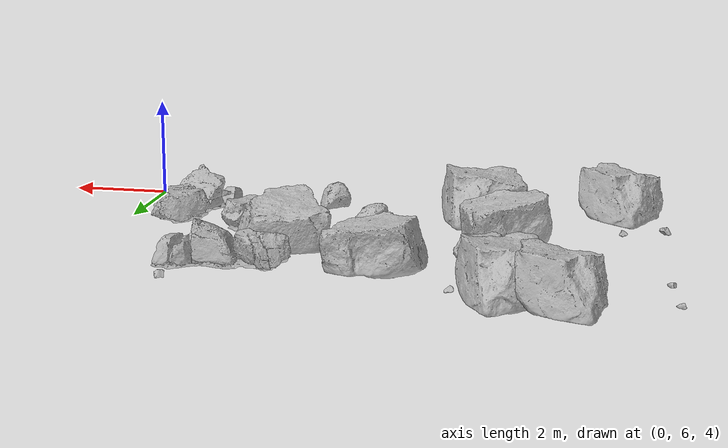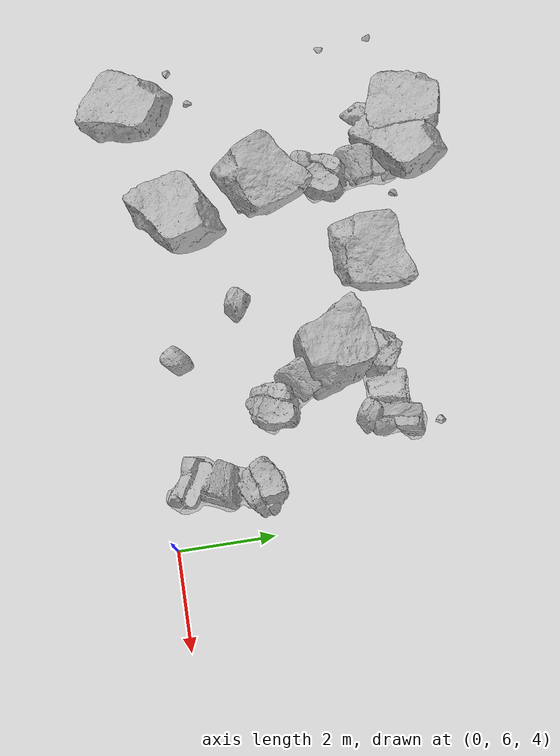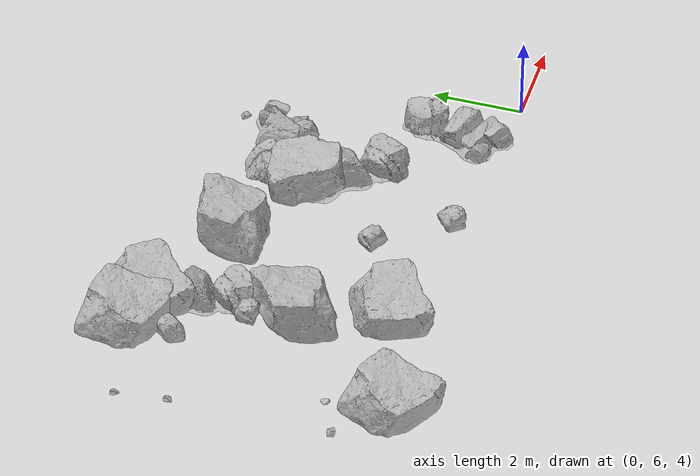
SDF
<sdf version="1.7">
 <world name="marsyard">
  <model name="Rock_16">
   <static>true</static>
   <pose>-9.6234 6.0666 4.0000 0.0000 0.0000 -2.8891</pose>
   <link name="link">
    <visual name="visual">
     <geometry><mesh><uri>package://rock_generator/rocks_ws/rock_1/meshes/rock_1.stl</uri></mesh></geometry>
    </visual>
    <collision name="collision">
     <geometry><mesh><uri>package://rock_generator/rocks_ws/rock_1/meshes/rock_1.stl</uri></mesh></geometry>
    </collision>
   </link>
  </model>
  <model name="Rock_46">
   <static>true</static>
   <pose>-1.1141 7.2669 4.0000 0.0000 0.0000 -1.7584</pose>
   <link name="link">
    <visual name="visual">
     <geometry><mesh><uri>package://rock_generator/rocks_ws/rock_2/meshes/rock_2.stl</uri></mesh></geometry>
    </visual>
    <collision name="collision">
     <geometry><mesh><uri>package://rock_generator/rocks_ws/rock_2/meshes/rock_2.stl</uri></mesh></geometry>
    </collision>
   </link>
  </model>
  <model name="Rock_100">
   <static>true</static>
   <pose>-7.6845 10.8635 4.0000 0.0000 0.0000 1.8561</pose>
   <link name="link">
    <visual name="visual">
     <geometry><mesh><uri>package://rock_generator/rocks_ws/rock_2/meshes/rock_2.stl</uri></mesh></geometry>
    </visual>
    <collision name="collision">
     <geometry><mesh><uri>package://rock_generator/rocks_ws/rock_2/meshes/rock_2.stl</uri></mesh></geometry>
    </collision>
   </link>
  </model>
  <model name="Rock_126">
   <static>true</static>
   <pose>-3.8596 6.4867 4.0000 0.0000 0.0000 -1.3820</pose>
   <link name="link">
    <visual name="visual">
     <geometry><mesh><uri>package://rock_generator/rocks_ws/rock_3/meshes/rock_3.stl</uri></mesh></geometry>
    </visual>
    <collision name="collision">
     <geometry><mesh><uri>package://rock_generator/rocks_ws/rock_3/meshes/rock_3.stl</uri></mesh></geometry>
    </collision>
   </link>
  </model>
  <model name="Rock_148">
   <static>true</static>
   <pose>-3.7696 9.8197 4.0000 0.0000 0.0000 1.0498</pose>
   <link name="link">
    <visual name="visual">
     <geometry><mesh><uri>package://rock_generator/rocks_ws/rock_1/meshes/rock_1.stl</uri></mesh></geometry>
    </visual>
    <collision name="collision">
     <geometry><mesh><uri>package://rock_generator/rocks_ws/rock_1/meshes/rock_1.stl</uri></mesh></geometry>
    </collision>
   </link>
  </model>
  <model name="Rock_159">
   <static>true</static>
   <pose>-3.0063 8.8831 4.0000 0.0000 0.0000 2.2579</pose>
   <link name="link">
    <visual name="visual">
     <geometry><mesh><uri>package://rock_generator/rocks_ws/rock_2/meshes/rock_2.stl</uri></mesh></geometry>
    </visual>
    <collision name="collision">
     <geometry><mesh><uri>package://rock_generator/rocks_ws/rock_2/meshes/rock_2.stl</uri></mesh></geometry>
    </collision>
   </link>
  </model>
  <model name="Rock_209">
   <static>true</static>
   <pose>-1.8545 11.8014 4.0000 0.0000 0.0000 -0.5566</pose>
   <link name="link">
    <visual name="visual">
     <geometry><mesh><uri>package://rock_generator/rocks_ws/rock_9/meshes/rock_9.stl</uri></mesh></geometry>
    </visual>
    <collision name="collision">
     <geometry><mesh><uri>package://rock_generator/rocks_ws/rock_9/meshes/rock_9.stl</uri></mesh></geometry>
    </collision>
   </link>
  </model>
  <model name="Rock_219">
   <static>true</static>
   <pose>-7.8618 9.8196 4.0000 0.0000 0.0000 -2.1397</pose>
   <link name="link">
    <visual name="visual">
     <geometry><mesh><uri>package://rock_generator/rocks_ws/rock_3/meshes/rock_3.stl</uri></mesh></geometry>
    </visual>
    <collision name="collision">
     <geometry><mesh><uri>package://rock_generator/rocks_ws/rock_3/meshes/rock_3.stl</uri></mesh></geometry>
    </collision>
   </link>
  </model>
  <model name="Rock_227">
   <static>true</static>
   <pose>-10.6850 7.1650 4.0000 0.0000 0.0000 0.7719</pose>
   <link name="link">
    <visual name="visual">
     <geometry><mesh><uri>package://rock_generator/rocks_ws/rock_9/meshes/rock_9.stl</uri></mesh></geometry>
    </visual>
    <collision name="collision">
     <geometry><mesh><uri>package://rock_generator/rocks_ws/rock_9/meshes/rock_9.stl</uri></mesh></geometry>
    </collision>
   </link>
  </model>
  <model name="Rock_234">
   <static>true</static>
   <pose>-10.8891 11.8621 4.0000 0.0000 0.0000 -1.6879</pose>
   <link name="link">
    <visual name="visual">
     <geometry><mesh><uri>package://rock_generator/rocks_ws/rock_7/meshes/rock_7.stl</uri></mesh></geometry>
    </visual>
    <collision name="collision">
     <geometry><mesh><uri>package://rock_generator/rocks_ws/rock_7/meshes/rock_7.stl</uri></mesh></geometry>
    </collision>
   </link>
  </model>
  <model name="Rock_257">
   <static>true</static>
   <pose>-9.8672 7.5329 4.0000 0.0000 0.0000 1.1404</pose>
   <link name="link">
    <visual name="visual">
     <geometry><mesh><uri>package://rock_generator/rocks_ws/rock_7/meshes/rock_7.stl</uri></mesh></geometry>
    </visual>
    <collision name="collision">
     <geometry><mesh><uri>package://rock_generator/rocks_ws/rock_7/meshes/rock_7.stl</uri></mesh></geometry>
    </collision>
   </link>
  </model>
  <model name="Rock_279">
   <static>true</static>
   <pose>-7.0508 6.7958 4.0000 0.0000 0.0000 2.7281</pose>
   <link name="link">
    <visual name="visual">
     <geometry><mesh><uri>package://rock_generator/rocks_ws/rock_1/meshes/rock_1.stl</uri></mesh></geometry>
    </visual>
    <collision name="collision">
     <geometry><mesh><uri>package://rock_generator/rocks_ws/rock_1/meshes/rock_1.stl</uri></mesh></geometry>
    </collision>
   </link>
  </model>
  <model name="Rock_324">
   <static>true</static>
   <pose>-8.9513 11.2703 4.0000 0.0000 0.0000 1.8938</pose>
   <link name="link">
    <visual name="visual">
     <geometry><mesh><uri>package://rock_generator/rocks_ws/rock_3/meshes/rock_3.stl</uri></mesh></geometry>
    </visual>
    <collision name="collision">
     <geometry><mesh><uri>package://rock_generator/rocks_ws/rock_3/meshes/rock_3.stl</uri></mesh></geometry>
    </collision>
   </link>
  </model>
  <model name="Rock_333">
   <static>true</static>
   <pose>-4.9471 7.9037 4.0000 0.0000 0.0000 -2.6653</pose>
   <link name="link">
    <visual name="visual">
     <geometry><mesh><uri>package://rock_generator/rocks_ws/rock_3/meshes/rock_3.stl</uri></mesh></geometry>
    </visual>
    <collision name="collision">
     <geometry><mesh><uri>package://rock_generator/rocks_ws/rock_3/meshes/rock_3.stl</uri></mesh></geometry>
    </collision>
   </link>
  </model>
  <model name="Rock_347">
   <static>true</static>
   <pose>-7.9799 11.8964 4.0000 0.0000 0.0000 2.9006</pose>
   <link name="link">
    <visual name="visual">
     <geometry><mesh><uri>package://rock_generator/rocks_ws/rock_1/meshes/rock_1.stl</uri></mesh></geometry>
    </visual>
    <collision name="collision">
     <geometry><mesh><uri>package://rock_generator/rocks_ws/rock_1/meshes/rock_1.stl</uri></mesh></geometry>
    </collision>
   </link>
  </model>
  <model name="Rock_349">
   <static>true</static>
   <pose>-7.1678 8.3682 4.0000 0.0000 0.0000 -2.5151</pose>
   <link name="link">
    <visual name="visual">
     <geometry><mesh><uri>package://rock_generator/rocks_ws/rock_9/meshes/rock_9.stl</uri></mesh></geometry>
    </visual>
    <collision name="collision">
     <geometry><mesh><uri>package://rock_generator/rocks_ws/rock_9/meshes/rock_9.stl</uri></mesh></geometry>
    </collision>
   </link>
  </model>
  <model name="Rock_390">
   <static>true</static>
   <pose>-10.7565 10.7251 4.0000 0.0000 0.0000 -2.3031</pose>
   <link name="link">
    <visual name="visual">
     <geometry><mesh><uri>package://rock_generator/rocks_ws/rock_7/meshes/rock_7.stl</uri></mesh></geometry>
    </visual>
    <collision name="collision">
     <geometry><mesh><uri>package://rock_generator/rocks_ws/rock_7/meshes/rock_7.stl</uri></mesh></geometry>
    </collision>
   </link>
  </model>
  <model name="Rock_421">
   <static>true</static>
   <pose>-7.7284 9.0165 4.0000 0.0000 0.0000 -0.3664</pose>
   <link name="link">
    <visual name="visual">
     <geometry><mesh><uri>package://rock_generator/rocks_ws/rock_1/meshes/rock_1.stl</uri></mesh></geometry>
    </visual>
    <collision name="collision">
     <geometry><mesh><uri>package://rock_generator/rocks_ws/rock_1/meshes/rock_1.stl</uri></mesh></geometry>
    </collision>
   </link>
  </model>
  <model name="Rock_433">
   <static>true</static>
   <pose>-2.1451 10.2958 4.0000 0.0000 0.0000 -2.8351</pose>
   <link name="link">
    <visual name="visual">
     <geometry><mesh><uri>package://rock_generator/rocks_ws/rock_3/meshes/rock_3.stl</uri></mesh></geometry>
    </visual>
    <collision name="collision">
     <geometry><mesh><uri>package://rock_generator/rocks_ws/rock_3/meshes/rock_3.stl</uri></mesh></geometry>
    </collision>
   </link>
  </model>
  <model name="Rock_439">
   <static>true</static>
   <pose>-7.0192 11.7471 4.0000 0.0000 0.0000 0.5536</pose>
   <link name="link">
    <visual name="visual">
     <geometry><mesh><uri>package://rock_generator/rocks_ws/rock_7/meshes/rock_7.stl</uri></mesh></geometry>
    </visual>
    <collision name="collision">
     <geometry><mesh><uri>package://rock_generator/rocks_ws/rock_7/meshes/rock_7.stl</uri></mesh></geometry>
    </collision>
   </link>
  </model>
  <model name="Rock_455">
   <static>true</static>
   <pose>-5.5580 11.1047 4.0000 0.0000 0.0000 -0.8370</pose>
   <link name="link">
    <visual name="visual">
     <geometry><mesh><uri>package://rock_generator/rocks_ws/rock_1/meshes/rock_1.stl</uri></mesh></geometry>
    </visual>
    <collision name="collision">
     <geometry><mesh><uri>package://rock_generator/rocks_ws/rock_1/meshes/rock_1.stl</uri></mesh></geometry>
    </collision>
   </link>
  </model>
  <model name="Rock_464">
   <static>true</static>
   <pose>-2.8007 10.7877 4.0000 0.0000 0.0000 0.1626</pose>
   <link name="link">
    <visual name="visual">
     <geometry><mesh><uri>package://rock_generator/rocks_ws/rock_2/meshes/rock_2.stl</uri></mesh></geometry>
    </visual>
    <collision name="collision">
     <geometry><mesh><uri>package://rock_generator/rocks_ws/rock_2/meshes/rock_2.stl</uri></mesh></geometry>
    </collision>
   </link>
  </model>
  <model name="Rock_475">
   <static>true</static>
   <pose>-8.7284 12.2233 4.0000 0.0000 0.0000 -2.5895</pose>
   <link name="link">
    <visual name="visual">
     <geometry><mesh><uri>package://rock_generator/rocks_ws/rock_1/meshes/rock_1.stl</uri></mesh></geometry>
    </visual>
    <collision name="collision">
     <geometry><mesh><uri>package://rock_generator/rocks_ws/rock_1/meshes/rock_1.stl</uri></mesh></geometry>
    </collision>
   </link>
  </model>
 </world>
</sdf>
